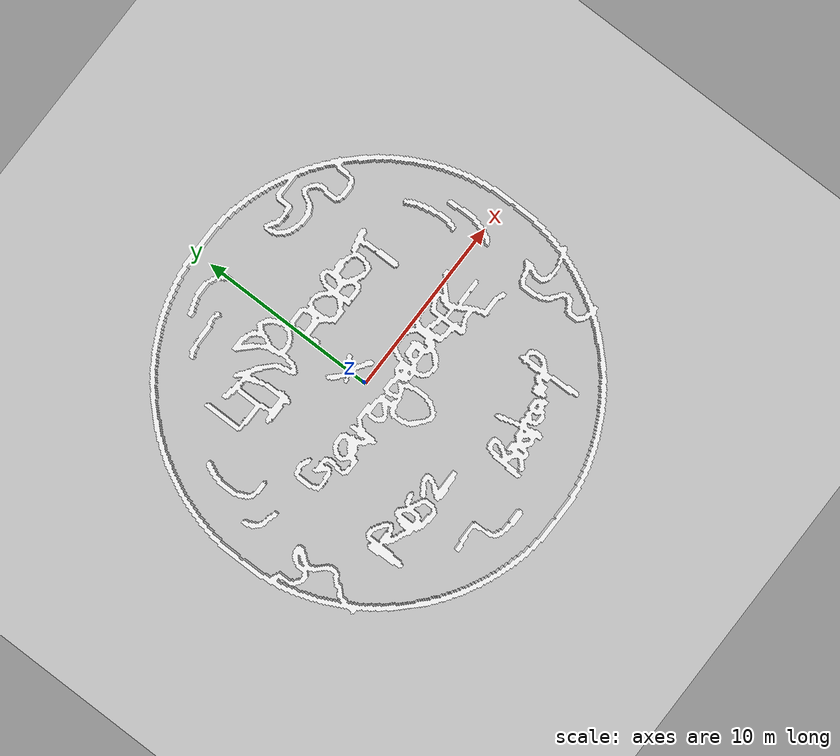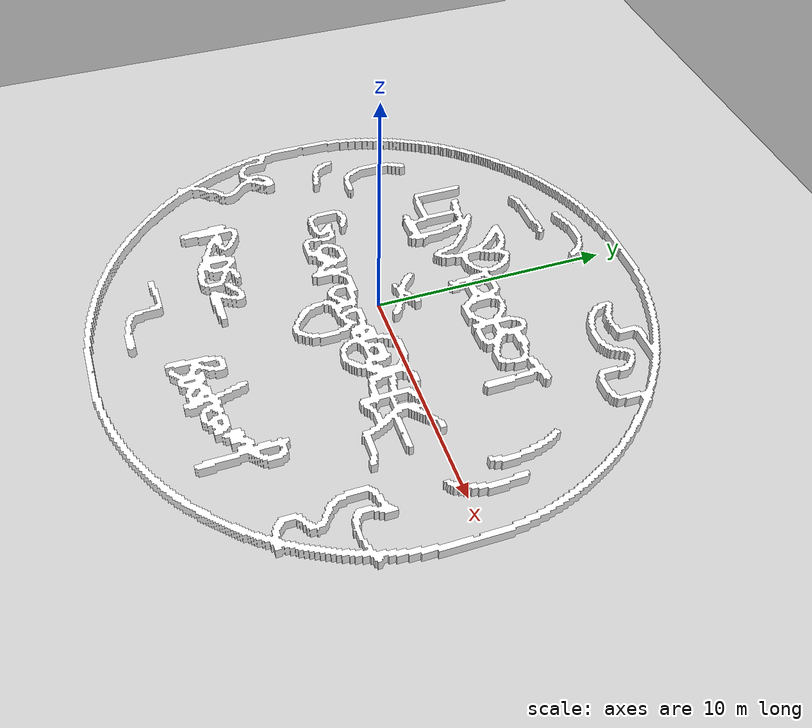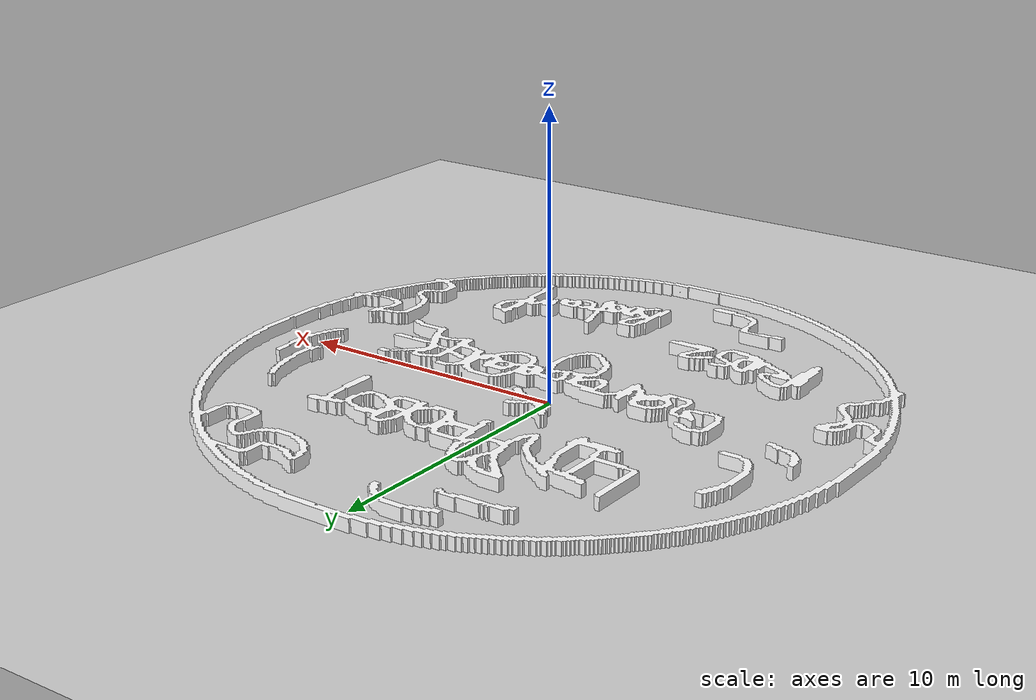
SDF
<sdf version="1.8">
  <world name="playground">

    <gravity>0 0 -9.8</gravity>
    <physics default="0" name="default_physics" type="ode">
      <max_step_size>0.01</max_step_size>
      <real_time_factor>1</real_time_factor>
      <real_time_update_rate>100</real_time_update_rate>
    </physics>

    <plugin
      filename="gz-sim-physics-system"
      name="gz::sim::systems::Physics">
    </plugin>
    <plugin
      filename="gz-sim-user-commands-system"
      name="gz::sim::systems::UserCommands">
    </plugin>
    <plugin
      filename="gz-sim-scene-broadcaster-system"
      name="gz::sim::systems::SceneBroadcaster">
    </plugin>

    <light name="sun" type="directional">
      <cast_shadows>true</cast_shadows>
      <pose>0 0 10 0 0 0</pose>
      <diffuse>0.8 0.8 0.8 1</diffuse>
      <specular>0.2 0.2 0.2 1</specular>
      <attenuation>
        <range>1000</range>
        <constant>0.9</constant>
        <linear>0.01</linear>
        <quadratic>0.001</quadratic>
      </attenuation>
      <direction>-0.5 0.1 -0.9</direction>
    </light>

    <model name="ground_plane">
      <static>true</static>
      <link name="link">
        <collision name="collision">
          <geometry>
            <plane>
              <normal>0 0 1</normal>
              <size>100 100</size>
            </plane>
          </geometry>
        </collision>
        <visual name="visual">
          <geometry>
            <plane>
              <normal>0 0 1</normal>
              <size>100 100</size>
            </plane>
          </geometry>
          <material>
            <ambient>0.8 0.8 0.8 1</ambient>
            <diffuse>0.8 0.8 0.8 1</diffuse>
            <specular>0.8 0.8 0.8 1</specular>
          </material>
        </visual>
      </link>
    </model>

<model name="challenge_map_bootcamp">
  <link name="link">
    <inertial>
      <mass>15</mass>
      <inertia>
        <ixx>0.0</ixx>
        <ixy>0.0</ixy>
        <ixz>0.0</ixz>
        <iyy>0.0</iyy>
        <iyz>0.0</iyz>
        <izz>0.0</izz>
      </inertia>
    </inertial>
    <collision name="collision">
      <pose>0 0 0 0 0 0</pose>
      <geometry>
        <mesh>
          <uri>model://challenge_map_bootcamp/meshes/challenge_map_bootcamp.stl</uri>
        </mesh>
      </geometry>
    </collision>
    <visual name="visual">
      <pose>0 0 0 0 0 0</pose>
      <geometry>
        <mesh>
          <uri>model://challenge_map_bootcamp/meshes/challenge_map_bootcamp.stl</uri>
        </mesh>
      </geometry>
      <material>
        <ambient>1 1 1 1</ambient>
        <diffuse>1 1 1 1</diffuse>
        <specular>0.5 0.5 0.5 1</specular>
        <emissive>0 0 0 1</emissive>
      </material>
    </visual>
  </link>
  <static>1</static>
</model>

  </world>
</sdf>
